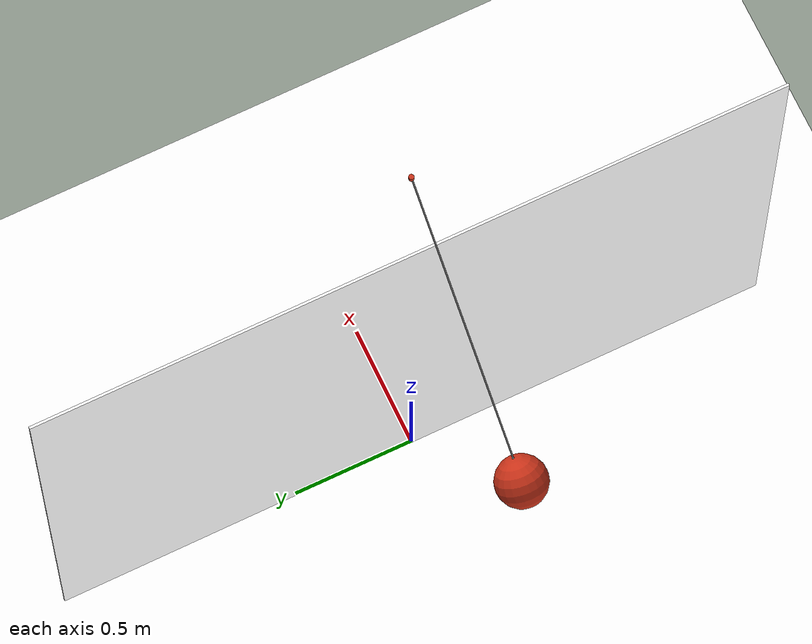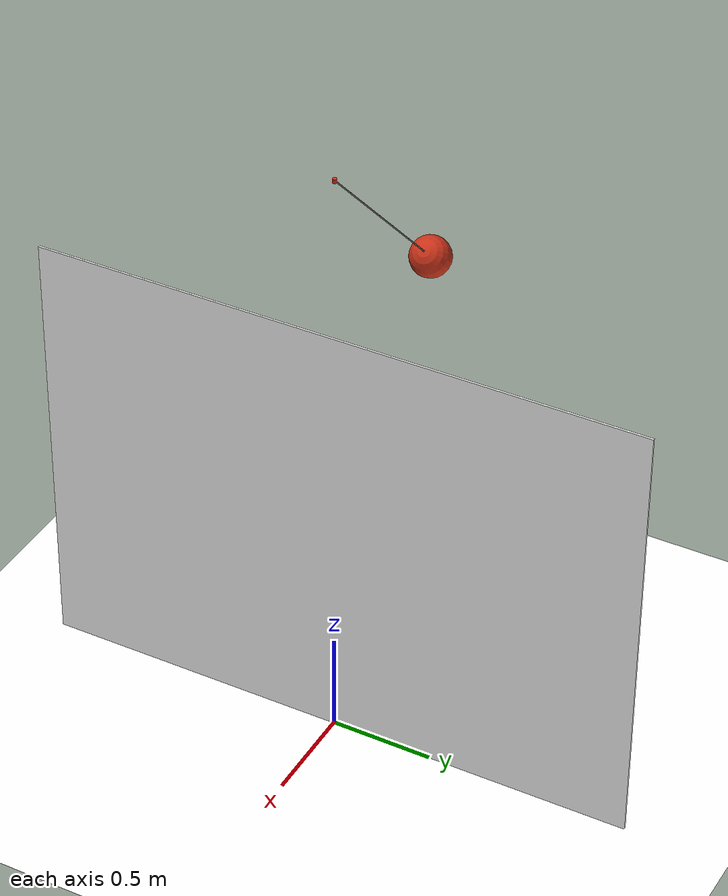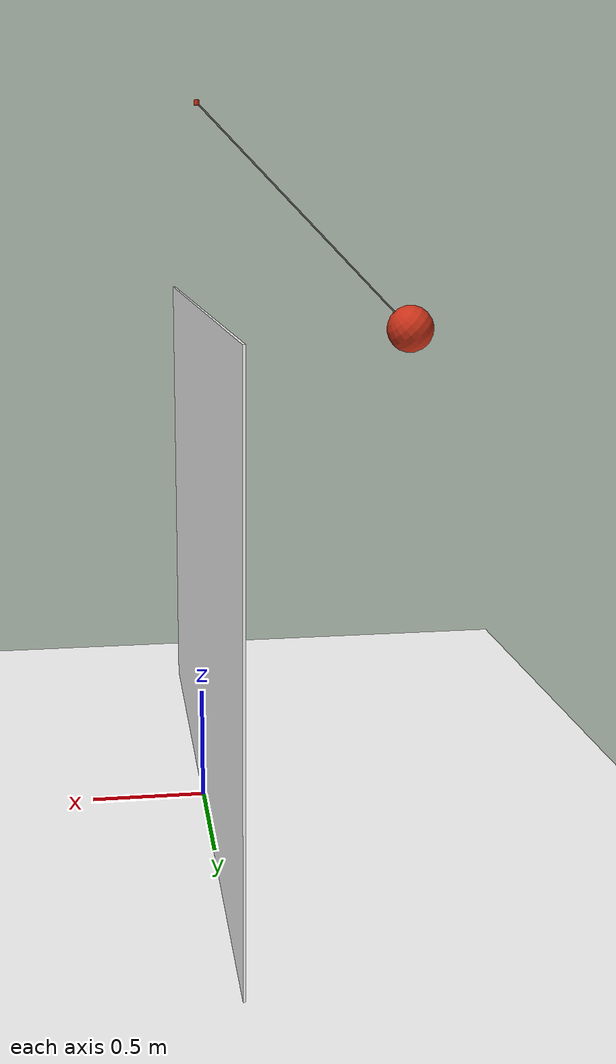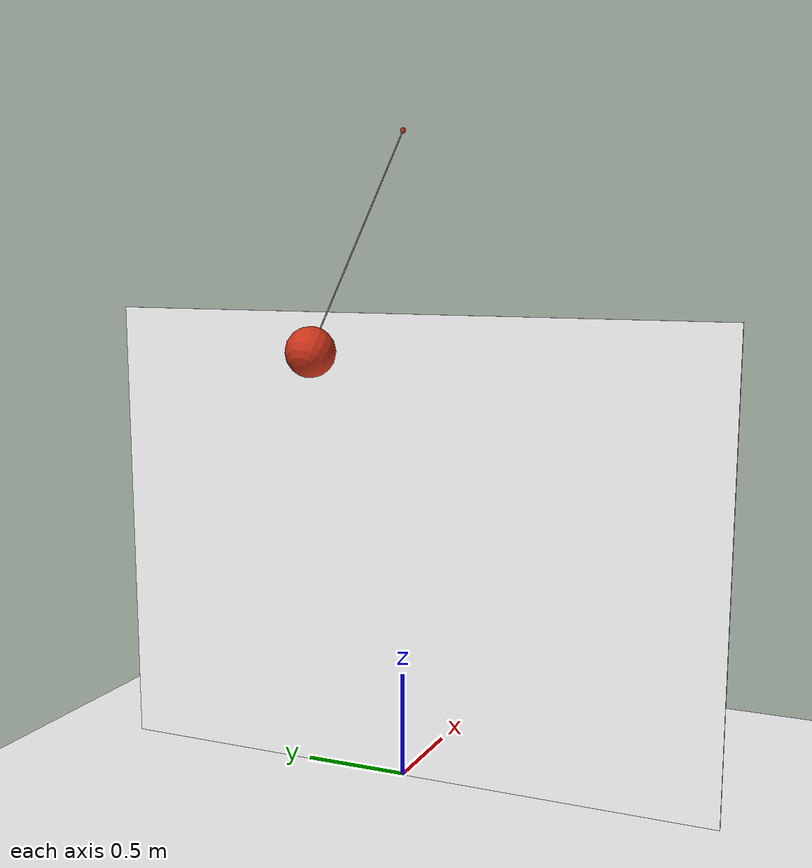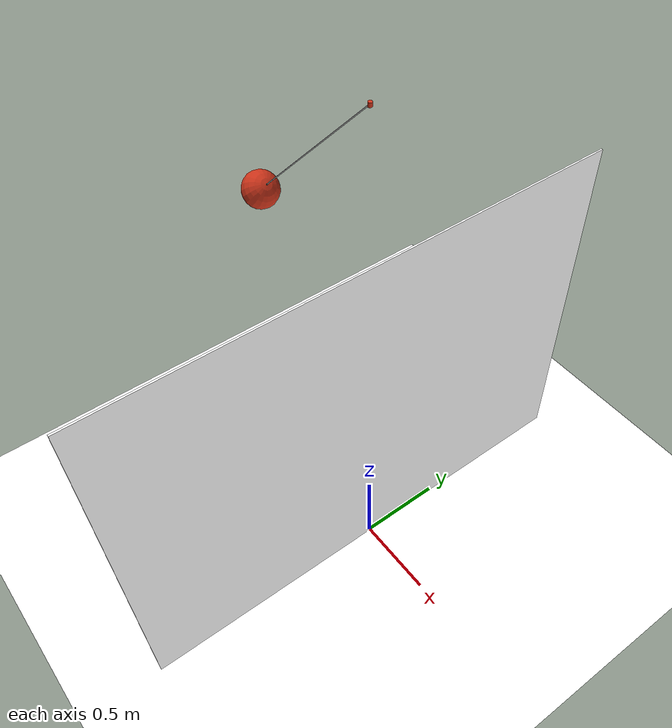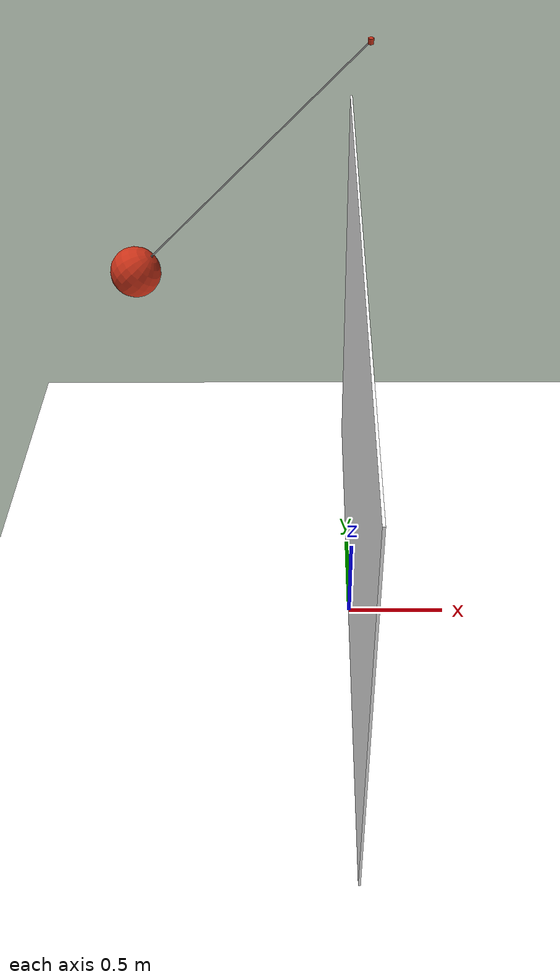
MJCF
<mujoco model="Mass">
    <option gravity="0 0 -9.81" integrator="RK4"/>

    <asset>
        <!-- Define the ribbed texture -->
        <texture name="ribbed_tex" file="images.png" />
        <!-- Define the material using the texture -->
        <material name="ribbed_mat" texture="ribbed_tex" />
    </asset>

    <worldbody>
        <light diffuse=".5 .5 .5" pos="0 0 5" dir="0 0 -1"/>
        <geom type="plane" size="2 2 0.1" rgba="1 1 1 1"/>

        <body>
            <geom name="board" type="box" size="1.5 0.005 1.1" pos="0 -0.005 1.1" euler="0 0 90" rgba="1 1 1 1"/>
        </body>

        <body name="base" pos="0 0 3">
            <joint name="j1" type="hinge" axis="0 1 0"/>
            <geom name="b" type="cylinder" mass="1" size=".01 .01" rgba="0.8 0.2 0.1 1" material="ribbed_mat"/>
            <site name="s1" pos="0 0 0"/>
            <body name="mass" pos="-.9 0 -.9" euler="0 45 0">
                <joint name="j2" type="hinge"/>
                <geom name="g" type="sphere" mass="5" size=".1" rgba="0.8 0.2 0.1 1"/>
                <site name="s2" pos="0 0 .1"/>
            </body>
        </body>

    </worldbody>

    <tendon>
        <spatial name="tendon1" limited="true" range="0 20" damping=".1" stiffness="1">
            <site site="s1"/>
            <site site="s2"/>
        </spatial>
    </tendon>

    <actuator>
        <position name="tendon1" tendon="tendon1" ctrllimited="true" ctrlrange="-20 20" kp="1000"/>
    </actuator>

    <sensor>
        <!-- Sensor for the joint angle (theta) -->
        <jointpos joint="j1" />
        <!-- Sensor for the joint angular velocity (theta dot) -->
        <jointvel joint="j1" />
    </sensor>

</mujoco>
